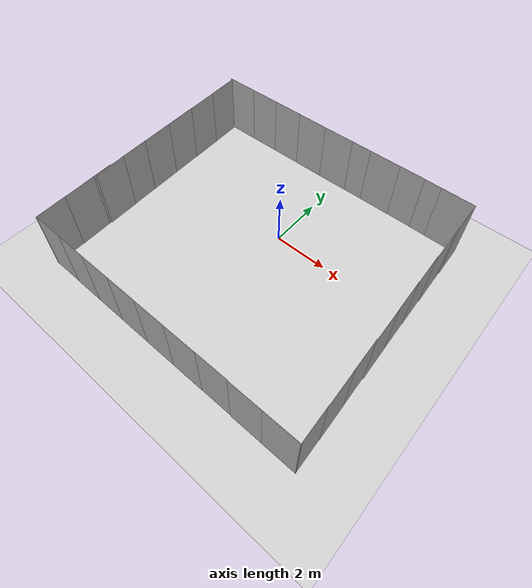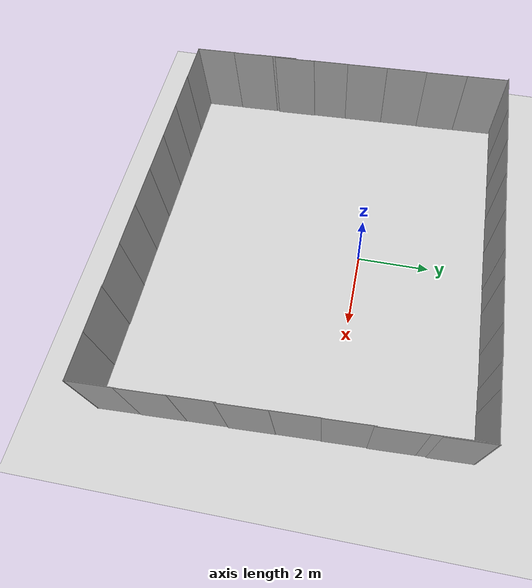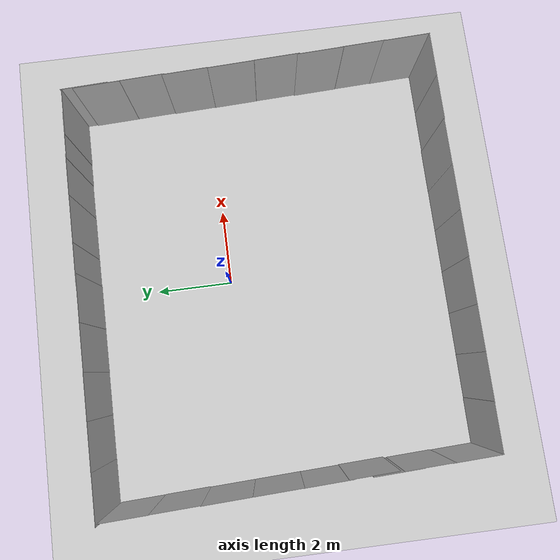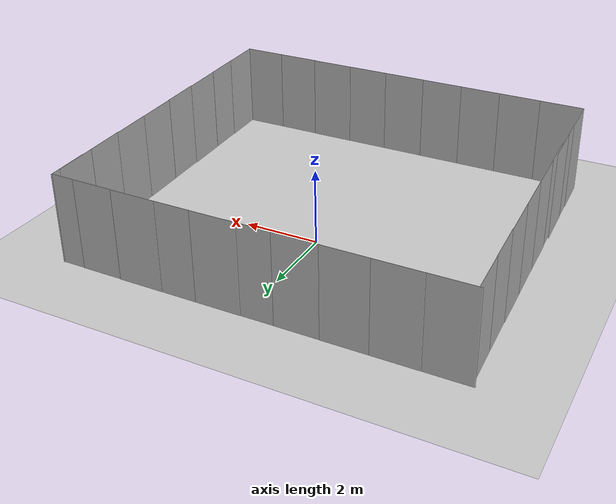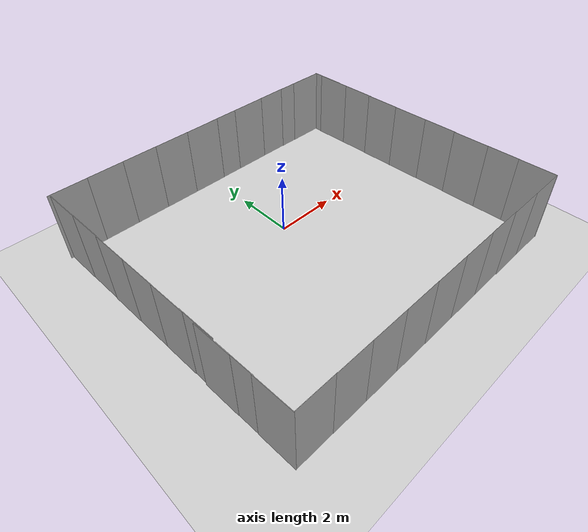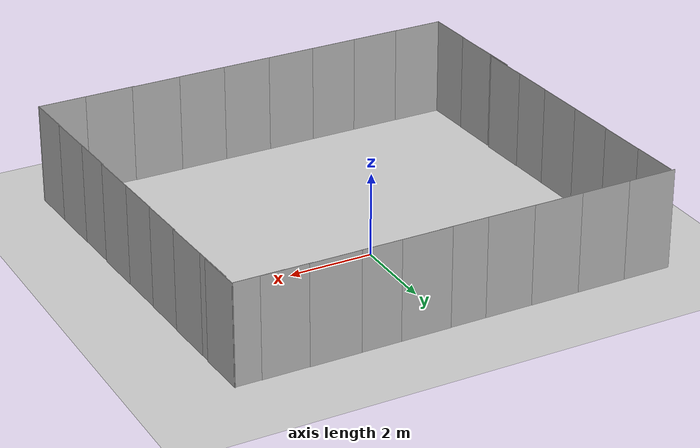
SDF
<sdf version="1.7">
 <world name="default">
  <light name="sun" type="directional">
   <pose>0 0 10 0 -0 0</pose>
   <diffuse>0.8 0.8 0.8 1</diffuse>
   <specular>0.2 0.2 0.2 1</specular>
   <attenuation>
    <range>1000</range>
    <constant>0.9</constant>
    <linear>0.01</linear>
    <quadratic>0.001</quadratic>
   </attenuation>
   <direction>-0.5 0.1 -0.9</direction>
   <spot><inner_angle>0</inner_angle><outer_angle>0</outer_angle><falloff>0</falloff></spot>
  </light>
  <model name="ground_plane">
   <static>1</static>
   <link name="link">
    <collision name="collision">
     <geometry><plane><normal>0 0 1</normal><size>100 100</size></plane></geometry>
     <surface>
      <contact><collide_bitmask>65535</collide_bitmask></contact>
      <friction><ode><mu>100</mu><mu2>50</mu2></ode></friction>
     </surface>
    </collision>
    <visual name="visual">
     <cast_shadows>0</cast_shadows>
     <geometry><plane><normal>0 0 1</normal><size>100 100</size></plane></geometry>
     <material>
      <script><uri>file://media/materials/scripts/gazebo.material</uri><name>Gazebo/Grey</name></script>
     </material>
    </visual>
   </link>
  </model>
  <gravity>0 0 -9.8</gravity>
  <magnetic_field>6e-06 2.3e-05 -4.2e-05</magnetic_field>
  <atmosphere type="adiabatic"/>
  <physics type="ode">
   <max_step_size>0.001</max_step_size>
   <real_time_factor>1</real_time_factor>
   <real_time_update_rate>1000</real_time_update_rate>
  </physics>
  <scene><ambient>0.4 0.4 0.4 1</ambient><background>0.7 0.7 0.7 1</background><shadows>1</shadows></scene>
  <spherical_coordinates>
   <surface_model>EARTH_WGS84</surface_model>
   <latitude_deg>0</latitude_deg>
   <longitude_deg>0</longitude_deg>
   <elevation>0</elevation>
   <heading_deg>0</heading_deg>
  </spherical_coordinates>
  <model name="nist_maze_wall_240_clone">
   <static>1</static>
   <link name="nist__maze_wall_240_link">
    <collision name="collision">
     <geometry>
      <mesh><uri>model://nist_maze_wall_240/meshes/nist_maze_wall_240.dae</uri><scale>1 1 1</scale></mesh>
     </geometry>
    </collision>
    <visual name="visual">
     <geometry>
      <mesh><uri>model://nist_maze_wall_240/meshes/nist_maze_wall_240.dae</uri><scale>1 1 1</scale></mesh>
     </geometry>
    </visual>
   </link>
   <pose>-1.40042 2.95469 0 0 -0 0</pose>
  </model>
  <model name="nist_maze_wall_240_clone_0">
   <static>1</static>
   <link name="nist__maze_wall_240_link">
    <collision name="collision">
     <geometry>
      <mesh><uri>model://nist_maze_wall_240/meshes/nist_maze_wall_240.dae</uri><scale>1 1 1</scale></mesh>
     </geometry>
    </collision>
    <visual name="visual">
     <geometry>
      <mesh><uri>model://nist_maze_wall_240/meshes/nist_maze_wall_240.dae</uri><scale>1 1 1</scale></mesh>
     </geometry>
    </visual>
   </link>
   <pose>-0.235376 2.9533 0 0 -0 0</pose>
  </model>
  <model name="nist_maze_wall_240_clone_0_clone">
   <static>1</static>
   <link name="nist__maze_wall_240_link">
    <collision name="collision">
     <geometry>
      <mesh><uri>model://nist_maze_wall_240/meshes/nist_maze_wall_240.dae</uri><scale>1 1 1</scale></mesh>
     </geometry>
    </collision>
    <visual name="visual">
     <geometry>
      <mesh><uri>model://nist_maze_wall_240/meshes/nist_maze_wall_240.dae</uri><scale>1 1 1</scale></mesh>
     </geometry>
    </visual>
   </link>
   <pose>-2.54013 2.95933 0 0 -0 0</pose>
  </model>
  <model name="nist_maze_wall_240_clone_0_clone_0">
   <static>1</static>
   <link name="nist__maze_wall_240_link">
    <collision name="collision">
     <geometry>
      <mesh><uri>model://nist_maze_wall_240/meshes/nist_maze_wall_240.dae</uri><scale>1 1 1</scale></mesh>
     </geometry>
    </collision>
    <visual name="visual">
     <geometry>
      <mesh><uri>model://nist_maze_wall_240/meshes/nist_maze_wall_240.dae</uri><scale>1 1 1</scale></mesh>
     </geometry>
    </visual>
   </link>
   <pose>-3.70817 2.95983 0 0 -0 0</pose>
  </model>
  <model name="nist_maze_wall_240_clone_0_clone_1">
   <static>1</static>
   <link name="nist__maze_wall_240_link">
    <collision name="collision">
     <geometry>
      <mesh><uri>model://nist_maze_wall_240/meshes/nist_maze_wall_240.dae</uri><scale>1 1 1</scale></mesh>
     </geometry>
    </collision>
    <visual name="visual">
     <geometry>
      <mesh><uri>model://nist_maze_wall_240/meshes/nist_maze_wall_240.dae</uri><scale>1 1 1</scale></mesh>
     </geometry>
    </visual>
   </link>
   <pose>-4.87484 2.95648 0 0 -0 0</pose>
  </model>
  <model name="nist_maze_wall_240_clone_0_clone_1_clone">
   <static>1</static>
   <link name="nist__maze_wall_240_link">
    <collision name="collision">
     <geometry>
      <mesh><uri>model://nist_maze_wall_240/meshes/nist_maze_wall_240.dae</uri><scale>1 1 1</scale></mesh>
     </geometry>
    </collision>
    <visual name="visual">
     <geometry>
      <mesh><uri>model://nist_maze_wall_240/meshes/nist_maze_wall_240.dae</uri><scale>1 1 1</scale></mesh>
     </geometry>
    </visual>
   </link>
   <pose>-5.9717 2.90438 0 0 0 -1.53096</pose>
  </model>
  <model name="nist_maze_wall_240_clone_0_clone_1_clone_clone">
   <static>1</static>
   <link name="nist__maze_wall_240_link">
    <collision name="collision">
     <geometry>
      <mesh><uri>model://nist_maze_wall_240/meshes/nist_maze_wall_240.dae</uri><scale>1 1 1</scale></mesh>
     </geometry>
    </collision>
    <visual name="visual">
     <geometry>
      <mesh><uri>model://nist_maze_wall_240/meshes/nist_maze_wall_240.dae</uri><scale>1 1 1</scale></mesh>
     </geometry>
    </visual>
   </link>
   <pose>-5.92002 1.72711 0 0 0 -1.53096</pose>
  </model>
  <model name="nist_maze_wall_240_clone_0_clone_1_clone_clone_0">
   <static>1</static>
   <link name="nist__maze_wall_240_link">
    <collision name="collision">
     <geometry>
      <mesh><uri>model://nist_maze_wall_240/meshes/nist_maze_wall_240.dae</uri><scale>1 1 1</scale></mesh>
     </geometry>
    </collision>
    <visual name="visual">
     <geometry>
      <mesh><uri>model://nist_maze_wall_240/meshes/nist_maze_wall_240.dae</uri><scale>1 1 1</scale></mesh>
     </geometry>
    </visual>
   </link>
   <pose>-5.88299 0.545908 0 0 0 -1.53096</pose>
  </model>
  <model name="nist_maze_wall_240_clone_0_clone_1_clone_clone_1">
   <static>1</static>
   <link name="nist__maze_wall_240_link">
    <collision name="collision">
     <geometry>
      <mesh><uri>model://nist_maze_wall_240/meshes/nist_maze_wall_240.dae</uri><scale>1 1 1</scale></mesh>
     </geometry>
    </collision>
    <visual name="visual">
     <geometry>
      <mesh><uri>model://nist_maze_wall_240/meshes/nist_maze_wall_240.dae</uri><scale>1 1 1</scale></mesh>
     </geometry>
    </visual>
   </link>
   <pose>-5.83595 -0.647234 0 0 0 -1.53096</pose>
  </model>
  <model name="nist_maze_wall_240_clone_0_clone_1_clone_clone_2">
   <static>1</static>
   <link name="nist__maze_wall_240_link">
    <collision name="collision">
     <geometry>
      <mesh><uri>model://nist_maze_wall_240/meshes/nist_maze_wall_240.dae</uri><scale>1 1 1</scale></mesh>
     </geometry>
    </collision>
    <visual name="visual">
     <geometry>
      <mesh><uri>model://nist_maze_wall_240/meshes/nist_maze_wall_240.dae</uri><scale>1 1 1</scale></mesh>
     </geometry>
    </visual>
   </link>
   <pose>-5.79302 -1.81769 0 0 0 -1.53096</pose>
  </model>
  <model name="nist_maze_wall_240_clone_0_clone_1_clone_clone_4">
   <static>1</static>
   <link name="nist__maze_wall_240_link">
    <collision name="collision">
     <geometry>
      <mesh><uri>model://nist_maze_wall_240/meshes/nist_maze_wall_240.dae</uri><scale>1 1 1</scale></mesh>
     </geometry>
    </collision>
    <visual name="visual">
     <geometry>
      <mesh><uri>model://nist_maze_wall_240/meshes/nist_maze_wall_240.dae</uri><scale>1 1 1</scale></mesh>
     </geometry>
    </visual>
   </link>
   <pose>-5.71646 -4.1438 0 0 0 -1.53096</pose>
  </model>
  <model name="nist_maze_wall_240_clone_0_clone_1_clone_clone_5">
   <static>1</static>
   <link name="nist__maze_wall_240_link">
    <collision name="collision">
     <geometry>
      <mesh><uri>model://nist_maze_wall_240/meshes/nist_maze_wall_240.dae</uri><scale>1 1 1</scale></mesh>
     </geometry>
    </collision>
    <visual name="visual">
     <geometry>
      <mesh><uri>model://nist_maze_wall_240/meshes/nist_maze_wall_240.dae</uri><scale>1 1 1</scale></mesh>
     </geometry>
    </visual>
   </link>
   <pose>-5.67986 -5.26295 0 0 0 -1.53096</pose>
  </model>
  <model name="nist_maze_wall_240_clone_0_clone_0_clone">
   <static>1</static>
   <link name="nist__maze_wall_240_link">
    <collision name="collision">
     <geometry>
      <mesh><uri>model://nist_maze_wall_240/meshes/nist_maze_wall_240.dae</uri><scale>1 1 1</scale></mesh>
     </geometry>
    </collision>
    <visual name="visual">
     <geometry>
      <mesh><uri>model://nist_maze_wall_240/meshes/nist_maze_wall_240.dae</uri><scale>1 1 1</scale></mesh>
     </geometry>
    </visual>
   </link>
   <pose>-4.45998 -6.42124 0 0 -0 0</pose>
  </model>
  <model name="nist_maze_wall_240_clone_0_clone_0_clone_0">
   <static>1</static>
   <link name="nist__maze_wall_240_link">
    <collision name="collision">
     <geometry>
      <mesh><uri>model://nist_maze_wall_240/meshes/nist_maze_wall_240.dae</uri><scale>1 1 1</scale></mesh>
     </geometry>
    </collision>
    <visual name="visual">
     <geometry>
      <mesh><uri>model://nist_maze_wall_240/meshes/nist_maze_wall_240.dae</uri><scale>1 1 1</scale></mesh>
     </geometry>
    </visual>
   </link>
   <pose>-3.30161 -6.42761 0 0 -0 0</pose>
  </model>
  <model name="nist_maze_wall_240_clone_0_clone_0_clone_1">
   <static>1</static>
   <link name="nist__maze_wall_240_link">
    <collision name="collision">
     <geometry>
      <mesh><uri>model://nist_maze_wall_240/meshes/nist_maze_wall_240.dae</uri><scale>1 1 1</scale></mesh>
     </geometry>
    </collision>
    <visual name="visual">
     <geometry>
      <mesh><uri>model://nist_maze_wall_240/meshes/nist_maze_wall_240.dae</uri><scale>1 1 1</scale></mesh>
     </geometry>
    </visual>
   </link>
   <pose>-2.1781 -6.42964 0 0 -0 0</pose>
  </model>
  <model name="nist_maze_wall_240_clone_0_clone_0_clone_2">
   <static>1</static>
   <link name="nist__maze_wall_240_link">
    <collision name="collision">
     <geometry>
      <mesh><uri>model://nist_maze_wall_240/meshes/nist_maze_wall_240.dae</uri><scale>1 1 1</scale></mesh>
     </geometry>
    </collision>
    <visual name="visual">
     <geometry>
      <mesh><uri>model://nist_maze_wall_240/meshes/nist_maze_wall_240.dae</uri><scale>1 1 1</scale></mesh>
     </geometry>
    </visual>
   </link>
   <pose>-1.02066 -6.43118 0 0 -0 0</pose>
  </model>
  <model name="nist_maze_wall_240_clone_0_clone_0_clone_3">
   <static>1</static>
   <link name="nist__maze_wall_240_link">
    <collision name="collision">
     <geometry>
      <mesh><uri>model://nist_maze_wall_240/meshes/nist_maze_wall_240.dae</uri><scale>1 1 1</scale></mesh>
     </geometry>
    </collision>
    <visual name="visual">
     <geometry>
      <mesh><uri>model://nist_maze_wall_240/meshes/nist_maze_wall_240.dae</uri><scale>1 1 1</scale></mesh>
     </geometry>
    </visual>
   </link>
   <pose>0.156083 -6.43516 0 0 -0 0</pose>
  </model>
  <model name="nist_maze_wall_240_clone_0_clone_0_clone_4">
   <static>1</static>
   <link name="nist__maze_wall_240_link">
    <collision name="collision">
     <geometry>
      <mesh><uri>model://nist_maze_wall_240/meshes/nist_maze_wall_240.dae</uri><scale>1 1 1</scale></mesh>
     </geometry>
    </collision>
    <visual name="visual">
     <geometry>
      <mesh><uri>model://nist_maze_wall_240/meshes/nist_maze_wall_240.dae</uri><scale>1 1 1</scale></mesh>
     </geometry>
    </visual>
   </link>
   <pose>1.3255 -6.43614 0 0 -0 0</pose>
  </model>
  <model name="nist_maze_wall_240_clone_0_clone_0_clone_5">
   <static>1</static>
   <link name="nist__maze_wall_240_link">
    <collision name="collision">
     <geometry>
      <mesh><uri>model://nist_maze_wall_240/meshes/nist_maze_wall_240.dae</uri><scale>1 1 1</scale></mesh>
     </geometry>
    </collision>
    <visual name="visual">
     <geometry>
      <mesh><uri>model://nist_maze_wall_240/meshes/nist_maze_wall_240.dae</uri><scale>1 1 1</scale></mesh>
     </geometry>
    </visual>
   </link>
   <pose>2.49532 -6.43265 0 0 -0 0</pose>
  </model>
  <model name="nist_maze_wall_240_clone_0_clone_0_clone_6">
   <static>1</static>
   <link name="nist__maze_wall_240_link">
    <collision name="collision">
     <geometry>
      <mesh><uri>model://nist_maze_wall_240/meshes/nist_maze_wall_240.dae</uri><scale>1 1 1</scale></mesh>
     </geometry>
    </collision>
    <visual name="visual">
     <geometry>
      <mesh><uri>model://nist_maze_wall_240/meshes/nist_maze_wall_240.dae</uri><scale>1 1 1</scale></mesh>
     </geometry>
    </visual>
   </link>
   <pose>3.65395 -6.44625 0 0 -0 0</pose>
  </model>
  <model name="nist_maze_wall_240_clone_0_clone_0_clone_7">
   <static>1</static>
   <link name="nist__maze_wall_240_link">
    <collision name="collision">
     <geometry>
      <mesh><uri>model://nist_maze_wall_240/meshes/nist_maze_wall_240.dae</uri><scale>1 1 1</scale></mesh>
     </geometry>
    </collision>
    <visual name="visual">
     <geometry>
      <mesh><uri>model://nist_maze_wall_240/meshes/nist_maze_wall_240.dae</uri><scale>1 1 1</scale></mesh>
     </geometry>
    </visual>
   </link>
   <pose>4.80136 -6.44868 0 0 -0 0</pose>
  </model>
  <model name="nist_maze_wall_240_clone_0_clone_1_clone_clone_2_clone">
   <static>1</static>
   <link name="nist__maze_wall_240_link">
    <collision name="collision">
     <geometry>
      <mesh><uri>model://nist_maze_wall_240/meshes/nist_maze_wall_240.dae</uri><scale>1 1 1</scale></mesh>
     </geometry>
    </collision>
    <visual name="visual">
     <geometry>
      <mesh><uri>model://nist_maze_wall_240/meshes/nist_maze_wall_240.dae</uri><scale>1 1 1</scale></mesh>
     </geometry>
    </visual>
   </link>
   <pose>-5.74234 -2.86665 0 0 0 -1.53096</pose>
  </model>
  <model name="nist_maze_wall_240_clone_0_clone_1_clone_clone_2_clone_0">
   <static>1</static>
   <link name="nist__maze_wall_240_link">
    <collision name="collision">
     <geometry>
      <mesh><uri>model://nist_maze_wall_240/meshes/nist_maze_wall_240.dae</uri><scale>1 1 1</scale></mesh>
     </geometry>
    </collision>
    <visual name="visual">
     <geometry>
      <mesh><uri>model://nist_maze_wall_240/meshes/nist_maze_wall_240.dae</uri><scale>1 1 1</scale></mesh>
     </geometry>
    </visual>
   </link>
   <pose>-5.75372 -3.4225 0 0 0 -1.53096</pose>
  </model>
  <model name="nist_maze_wall_240_clone_0_clone_1_clone_clone_2_clone_1">
   <static>1</static>
   <link name="nist__maze_wall_240_link">
    <collision name="collision">
     <geometry>
      <mesh><uri>model://nist_maze_wall_240/meshes/nist_maze_wall_240.dae</uri><scale>1 1 1</scale></mesh>
     </geometry>
    </collision>
    <visual name="visual">
     <geometry>
      <mesh><uri>model://nist_maze_wall_240/meshes/nist_maze_wall_240.dae</uri><scale>1 1 1</scale></mesh>
     </geometry>
    </visual>
   </link>
   <pose>4.76025 -5.29232 0 0 0 -1.53</pose>
  </model>
  <model name="nist_maze_wall_240_clone_0_clone_1_clone_clone_2_clone_1_clone">
   <static>1</static>
   <link name="nist__maze_wall_240_link">
    <collision name="collision">
     <geometry>
      <mesh><uri>model://nist_maze_wall_240/meshes/nist_maze_wall_240.dae</uri><scale>1 1 1</scale></mesh>
     </geometry>
    </collision>
    <visual name="visual">
     <geometry>
      <mesh><uri>model://nist_maze_wall_240/meshes/nist_maze_wall_240.dae</uri><scale>1 1 1</scale></mesh>
     </geometry>
    </visual>
   </link>
   <pose>4.72185 -4.17115 0 0 0 -1.53</pose>
  </model>
  <model name="nist_maze_wall_240_clone_0_clone_1_clone_clone_2_clone_1_clone_0">
   <static>1</static>
   <link name="nist__maze_wall_240_link">
    <collision name="collision">
     <geometry>
      <mesh><uri>model://nist_maze_wall_240/meshes/nist_maze_wall_240.dae</uri><scale>1 1 1</scale></mesh>
     </geometry>
    </collision>
    <visual name="visual">
     <geometry>
      <mesh><uri>model://nist_maze_wall_240/meshes/nist_maze_wall_240.dae</uri><scale>1 1 1</scale></mesh>
     </geometry>
    </visual>
   </link>
   <pose>4.6718 -3.0731 0 0 0 -1.53</pose>
  </model>
  <model name="nist_maze_wall_240_clone_0_clone_1_clone_clone_2_clone_1_clone_1">
   <static>1</static>
   <link name="nist__maze_wall_240_link">
    <collision name="collision">
     <geometry>
      <mesh><uri>model://nist_maze_wall_240/meshes/nist_maze_wall_240.dae</uri><scale>1 1 1</scale></mesh>
     </geometry>
    </collision>
    <visual name="visual">
     <geometry>
      <mesh><uri>model://nist_maze_wall_240/meshes/nist_maze_wall_240.dae</uri><scale>1 1 1</scale></mesh>
     </geometry>
    </visual>
   </link>
   <pose>4.64291 -1.92881 0 0 0 -1.53</pose>
  </model>
  <model name="nist_maze_wall_240_clone_0_clone_1_clone_clone_2_clone_1_clone_2">
   <static>1</static>
   <link name="nist__maze_wall_240_link">
    <collision name="collision">
     <geometry>
      <mesh><uri>model://nist_maze_wall_240/meshes/nist_maze_wall_240.dae</uri><scale>1 1 1</scale></mesh>
     </geometry>
    </collision>
    <visual name="visual">
     <geometry>
      <mesh><uri>model://nist_maze_wall_240/meshes/nist_maze_wall_240.dae</uri><scale>1 1 1</scale></mesh>
     </geometry>
    </visual>
   </link>
   <pose>4.59152 -0.770224 0 0 0 -1.53</pose>
  </model>
  <model name="nist_maze_wall_240_clone_0_clone_1_clone_clone_2_clone_1_clone_3">
   <static>1</static>
   <link name="nist__maze_wall_240_link">
    <collision name="collision">
     <geometry>
      <mesh><uri>model://nist_maze_wall_240/meshes/nist_maze_wall_240.dae</uri><scale>1 1 1</scale></mesh>
     </geometry>
    </collision>
    <visual name="visual">
     <geometry>
      <mesh><uri>model://nist_maze_wall_240/meshes/nist_maze_wall_240.dae</uri><scale>1 1 1</scale></mesh>
     </geometry>
    </visual>
   </link>
   <pose>4.55215 0.394169 0 0 0 -1.53</pose>
  </model>
  <model name="nist_maze_wall_240_clone_0_clone_1_clone_clone_2_clone_1_clone_4">
   <static>1</static>
   <link name="nist__maze_wall_240_link">
    <collision name="collision">
     <geometry>
      <mesh><uri>model://nist_maze_wall_240/meshes/nist_maze_wall_240.dae</uri><scale>1 1 1</scale></mesh>
     </geometry>
    </collision>
    <visual name="visual">
     <geometry>
      <mesh><uri>model://nist_maze_wall_240/meshes/nist_maze_wall_240.dae</uri><scale>1 1 1</scale></mesh>
     </geometry>
    </visual>
   </link>
   <pose>4.5207 1.51951 0 0 0 -1.53</pose>
  </model>
  <model name="nist_maze_wall_240_clone_0_clone_1_clone_clone_2_clone_1_clone_5">
   <static>1</static>
   <link name="nist__maze_wall_240_link">
    <collision name="collision">
     <geometry>
      <mesh><uri>model://nist_maze_wall_240/meshes/nist_maze_wall_240.dae</uri><scale>1 1 1</scale></mesh>
     </geometry>
    </collision>
    <visual name="visual">
     <geometry>
      <mesh><uri>model://nist_maze_wall_240/meshes/nist_maze_wall_240.dae</uri><scale>1 1 1</scale></mesh>
     </geometry>
    </visual>
   </link>
   <pose>4.47286 2.65 0 0 0 -1.53</pose>
  </model>
  <model name="nist_maze_wall_240_clone_0_clone_2">
   <static>1</static>
   <link name="nist__maze_wall_240_link">
    <collision name="collision">
     <geometry>
      <mesh><uri>model://nist_maze_wall_240/meshes/nist_maze_wall_240.dae</uri><scale>1 1 1</scale></mesh>
     </geometry>
    </collision>
    <visual name="visual">
     <geometry>
      <mesh><uri>model://nist_maze_wall_240/meshes/nist_maze_wall_240.dae</uri><scale>1 1 1</scale></mesh>
     </geometry>
    </visual>
   </link>
   <pose>0.641974 2.96118 0 0 -0 0</pose>
  </model>
  <model name="nist_maze_wall_240_clone_0_clone_3">
   <static>1</static>
   <link name="nist__maze_wall_240_link">
    <collision name="collision">
     <geometry>
      <mesh><uri>model://nist_maze_wall_240/meshes/nist_maze_wall_240.dae</uri><scale>1 1 1</scale></mesh>
     </geometry>
    </collision>
    <visual name="visual">
     <geometry>
      <mesh><uri>model://nist_maze_wall_240/meshes/nist_maze_wall_240.dae</uri><scale>1 1 1</scale></mesh>
     </geometry>
    </visual>
   </link>
   <pose>1.70736 2.96067 0 0 -0 0</pose>
  </model>
  <model name="nist_maze_wall_240_clone_0_clone_4">
   <static>1</static>
   <link name="nist__maze_wall_240_link">
    <collision name="collision">
     <geometry>
      <mesh><uri>model://nist_maze_wall_240/meshes/nist_maze_wall_240.dae</uri><scale>1 1 1</scale></mesh>
     </geometry>
    </collision>
    <visual name="visual">
     <geometry>
      <mesh><uri>model://nist_maze_wall_240/meshes/nist_maze_wall_240.dae</uri><scale>1 1 1</scale></mesh>
     </geometry>
    </visual>
   </link>
   <pose>2.75905 2.96413 0 0 -0 0</pose>
  </model>
  <model name="nist_maze_wall_240_clone_0_clone_5">
   <static>1</static>
   <link name="nist__maze_wall_240_link">
    <collision name="collision">
     <geometry>
      <mesh><uri>model://nist_maze_wall_240/meshes/nist_maze_wall_240.dae</uri><scale>1 1 1</scale></mesh>
     </geometry>
    </collision>
    <visual name="visual">
     <geometry>
      <mesh><uri>model://nist_maze_wall_240/meshes/nist_maze_wall_240.dae</uri><scale>1 1 1</scale></mesh>
     </geometry>
    </visual>
   </link>
   <pose>3.8468 2.95339 0 0 -0 0</pose>
  </model>
  <model name="nist_maze_wall_240_clone_0_clone_6">
   <static>1</static>
   <link name="nist__maze_wall_240_link">
    <collision name="collision">
     <geometry>
      <mesh><uri>model://nist_maze_wall_240/meshes/nist_maze_wall_240.dae</uri><scale>1 1 1</scale></mesh>
     </geometry>
    </collision>
    <visual name="visual">
     <geometry>
      <mesh><uri>model://nist_maze_wall_240/meshes/nist_maze_wall_240.dae</uri><scale>1 1 1</scale></mesh>
     </geometry>
    </visual>
   </link>
   <pose>4.46441 2.94404 0 0 -0 0</pose>
  </model>
  <model name="nist_maze_wall_240_clone_0_clone_1_clone_clone_2_clone_1_clone_5_clone">
   <static>1</static>
   <link name="nist__maze_wall_240_link">
    <collision name="collision">
     <geometry>
      <mesh><uri>model://nist_maze_wall_240/meshes/nist_maze_wall_240.dae</uri><scale>1 1 1</scale></mesh>
     </geometry>
    </collision>
    <visual name="visual">
     <geometry>
      <mesh><uri>model://nist_maze_wall_240/meshes/nist_maze_wall_240.dae</uri><scale>1 1 1</scale></mesh>
     </geometry>
    </visual>
   </link>
   <pose>4.47669 2.95566 0 0 0 -1.53</pose>
  </model>
 </world>
</sdf>
